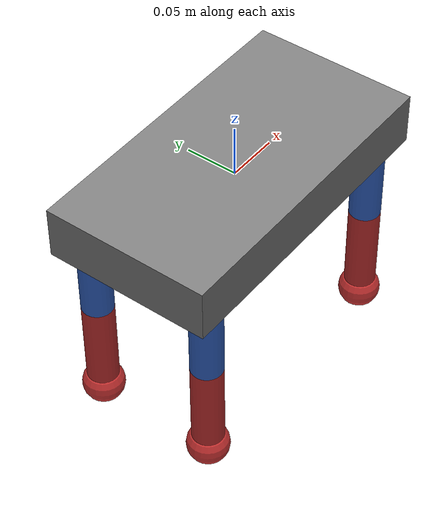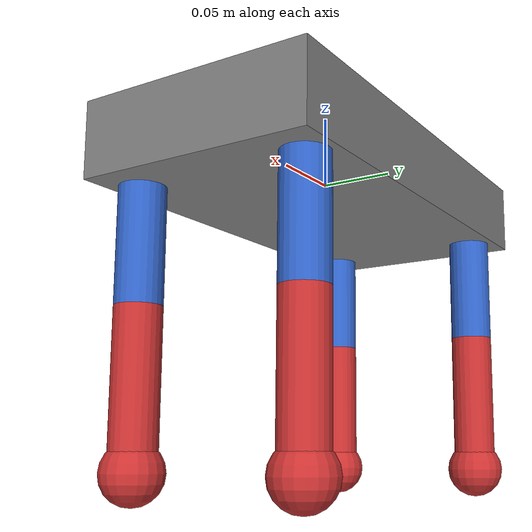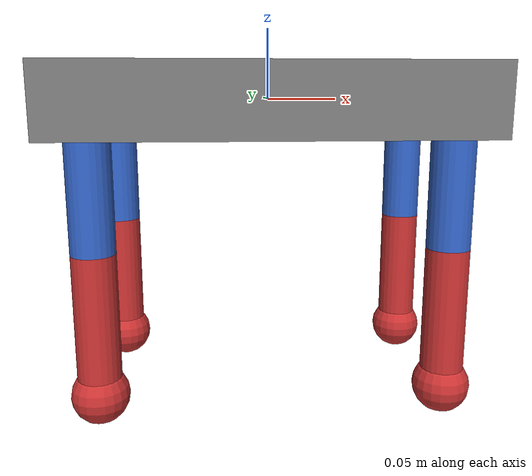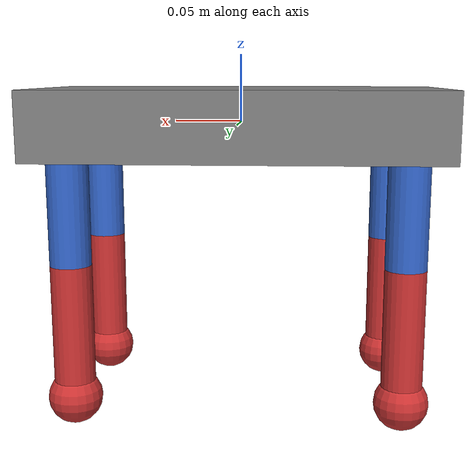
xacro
<?xml version="1.0"?>
<robot xmlns:xacro="http://www.ros.org/wiki/xacro" name="dog">

  <!-- ===================== 全局参数 ===================== -->
  <xacro:property name="body_length"  value="0.30"/>
  <xacro:property name="body_width"   value="0.16"/>
  <xacro:property name="body_height"  value="0.05"/>

  <xacro:property name="thigh_length" value="0.10"/>
  <xacro:property name="calf_length"  value="0.10"/>
  <xacro:property name="leg_radius"   value="0.015"/>
  <xacro:property name="foot_radius"  value="0.02"/>

  <!-- 关节限位与力矩，教具阶段先用保守值 -->
  <xacro:property name="hip_limit"   value="0.8"/>
  <xacro:property name="thigh_limit" value="1.2"/>
  <xacro:property name="calf_limit"  value="1.5"/>
  <xacro:property name="joint_effort" value="10.0"/>
  <xacro:property name="joint_velocity" value="5.0"/>

  <!-- ===================== 材质 ===================== -->
  <material name="gray">
    <color rgba="0.5 0.5 0.5 1.0"/>
  </material>
  <material name="blue">
    <color rgba="0.2 0.4 0.8 1.0"/>
  </material>
  <material name="red">
    <color rgba="0.8 0.2 0.2 1.0"/>
  </material>

  <!-- ===================== 惯性宏 ===================== -->
  <xacro:macro name="box_inertial" params="mass x y z">
    <inertial>
      <mass value="${mass}"/>
      <origin xyz="0 0 0" rpy="0 0 0"/>
      <inertia ixx="${mass*(y*y+z*z)/12.0}" ixy="0.0" ixz="0.0"
               iyy="${mass*(x*x+z*z)/12.0}" iyz="0.0"
               izz="${mass*(x*x+y*y)/12.0}"/>
    </inertial>
  </xacro:macro>

  <xacro:macro name="cylinder_inertial" params="mass radius length">
    <inertial>
      <mass value="${mass}"/>
      <origin xyz="0 0 0" rpy="0 0 0"/>
      <inertia ixx="${mass*(3*radius*radius+length*length)/12.0}" ixy="0.0" ixz="0.0"
               iyy="${mass*(3*radius*radius+length*length)/12.0}" iyz="0.0"
               izz="${mass*radius*radius/2.0}"/>
    </inertial>
  </xacro:macro>

  <!-- 虚拟根连杆，解决 KDL 和 Gazebo 对根连杆惯性的限制 -->
  <link name="base_footprint"/>

  <joint name="base_joint" type="fixed">
    <parent link="base_footprint"/>
    <child link="base_link"/>
    <origin xyz="0 0 0" rpy="0 0 0"/>
  </joint>

  <!-- ===================== 机身 ===================== -->
  <link name="base_link">
    <visual>
      <origin xyz="0 0 0" rpy="0 0 0"/>
      <geometry>
        <box size="${body_length} ${body_width} ${body_height}"/>
      </geometry>
      <material name="gray"/>
    </visual>
    <collision>
      <origin xyz="0 0 0" rpy="0 0 0"/>
      <geometry>
        <box size="${body_length} ${body_width} ${body_height}"/>
      </geometry>
    </collision>
    <xacro:box_inertial mass="2.0" x="${body_length}" y="${body_width}" z="${body_height}"/>
  </link>

  <!-- ===================== 单腿宏 ===================== -->
  <xacro:macro name="leg" params="prefix hip_x hip_y">

    <!-- 髋关节：连接机身与大腿，绕 x 轴摆动 -->
    <joint name="${prefix}_hip_joint" type="revolute">
      <parent link="base_link"/>
      <child link="${prefix}_thigh_link"/>
      <origin xyz="${hip_x} ${hip_y} 0" rpy="0 0 0"/>
      <axis xyz="1 0 0"/>
      <limit lower="${-hip_limit}" upper="${hip_limit}"
             effort="${joint_effort}" velocity="${joint_velocity}"/>
      <dynamics damping="0.5" friction="0.1"/>
    </joint>

    <!-- 大腿连杆 -->
    <link name="${prefix}_thigh_link">
      <visual>
        <origin xyz="0 0 ${-thigh_length/2.0}" rpy="0 0 0"/>
        <geometry>
          <cylinder radius="${leg_radius}" length="${thigh_length}"/>
        </geometry>
        <material name="blue"/>
      </visual>
      <collision>
        <origin xyz="0 0 ${-thigh_length/2.0}" rpy="0 0 0"/>
        <geometry>
          <cylinder radius="${leg_radius}" length="${thigh_length}"/>
        </geometry>
      </collision>
      <xacro:cylinder_inertial mass="0.3" radius="${leg_radius}" length="${thigh_length}"/>
    </link>

    <!-- 大腿关节：连接大腿与小腿，绕 y 轴转动 -->
    <joint name="${prefix}_thigh_joint" type="revolute">
      <parent link="${prefix}_thigh_link"/>
      <child link="${prefix}_calf_link"/>
      <origin xyz="0 0 ${-thigh_length}" rpy="0 0 0"/>
      <axis xyz="0 1 0"/>
      <limit lower="${-thigh_limit}" upper="${thigh_limit}"
             effort="${joint_effort}" velocity="${joint_velocity}"/>
      <dynamics damping="0.5" friction="0.1"/>
    </joint>

    <!-- 小腿连杆 -->
    <link name="${prefix}_calf_link">
      <visual>
        <origin xyz="0 0 ${-calf_length/2.0}" rpy="0 0 0"/>
        <geometry>
          <cylinder radius="${leg_radius}" length="${calf_length}"/>
        </geometry>
        <material name="red"/>
      </visual>
      <collision>
        <origin xyz="0 0 ${-calf_length/2.0}" rpy="0 0 0"/>
        <geometry>
          <cylinder radius="${leg_radius}" length="${calf_length}"/>
        </geometry>
      </collision>
      <xacro:cylinder_inertial mass="0.2" radius="${leg_radius}" length="${calf_length}"/>
    </link>

    <!-- 小腿关节：连接小腿与足端，绕 y 轴转动 -->
    <joint name="${prefix}_calf_joint" type="revolute">
      <parent link="${prefix}_calf_link"/>
      <child link="${prefix}_foot_link"/>
      <origin xyz="0 0 ${-calf_length}" rpy="0 0 0"/>
      <axis xyz="0 1 0"/>
      <limit lower="${-calf_limit}" upper="${calf_limit}"
             effort="${joint_effort}" velocity="${joint_velocity}"/>
      <dynamics damping="0.5" friction="0.1"/>
    </joint>

    <!-- 足端连杆 -->
    <link name="${prefix}_foot_link">
      <visual>
        <origin xyz="0 0 0" rpy="0 0 0"/>
        <geometry>
          <sphere radius="${foot_radius}"/>
        </geometry>
        <material name="red"/>
      </visual>
      <collision>
        <origin xyz="0 0 0" rpy="0 0 0"/>
        <geometry>
          <sphere radius="${foot_radius}"/>
        </geometry>
      </collision>
      <inertial>
        <mass value="0.05"/>
        <origin xyz="0 0 0" rpy="0 0 0"/>
        <inertia ixx="1e-5" ixy="0.0" ixz="0.0"
                 iyy="1e-5" iyz="0.0"
                 izz="1e-5"/>
      </inertial>
    </link>

  </xacro:macro>

  <!-- ===================== 四条腿 ===================== -->
  <!-- 髋关节位置：x 前后，y 左右 -->
  <!-- 顺序：FL, FR, RL, RR，与关节编号规范一致 -->

  <xacro:leg prefix="FL" hip_x="${ body_length/2.0 - 0.03}" hip_y="${ body_width/2.0 - 0.02}"/>
  <xacro:leg prefix="FR" hip_x="${ body_length/2.0 - 0.03}" hip_y="${-body_width/2.0 + 0.02}"/>
  <xacro:leg prefix="RL" hip_x="${-body_length/2.0 + 0.03}" hip_y="${ body_width/2.0 - 0.02}"/>
  <xacro:leg prefix="RR" hip_x="${-body_length/2.0 + 0.03}" hip_y="${-body_width/2.0 + 0.02}"/>

<!-- ===================== ros2_control ===================== -->
<ros2_control name="DogSystem" type="system">
  <hardware>
    <plugin>gazebo_ros2_control/GazeboSystem</plugin>
  </hardware>

  <joint name="FL_hip_joint">
    <command_interface name="position"/>
    <state_interface name="position"/>
    <state_interface name="velocity"/>
  </joint>
  <joint name="FL_thigh_joint">
    <command_interface name="position"/>
    <state_interface name="position"/>
    <state_interface name="velocity"/>
  </joint>
  <joint name="FL_calf_joint">
    <command_interface name="position"/>
    <state_interface name="position"/>
    <state_interface name="velocity"/>
  </joint>

  <joint name="FR_hip_joint">
    <command_interface name="position"/>
    <state_interface name="position"/>
    <state_interface name="velocity"/>
  </joint>
  <joint name="FR_thigh_joint">
    <command_interface name="position"/>
    <state_interface name="position"/>
    <state_interface name="velocity"/>
  </joint>
  <joint name="FR_calf_joint">
    <command_interface name="position"/>
    <state_interface name="position"/>
    <state_interface name="velocity"/>
  </joint>

  <joint name="RL_hip_joint">
    <command_interface name="position"/>
    <state_interface name="position"/>
    <state_interface name="velocity"/>
  </joint>
  <joint name="RL_thigh_joint">
    <command_interface name="position"/>
    <state_interface name="position"/>
    <state_interface name="velocity"/>
  </joint>
  <joint name="RL_calf_joint">
    <command_interface name="position"/>
    <state_interface name="position"/>
    <state_interface name="velocity"/>
  </joint>

  <joint name="RR_hip_joint">
    <command_interface name="position"/>
    <state_interface name="position"/>
    <state_interface name="velocity"/>
  </joint>
  <joint name="RR_thigh_joint">
    <command_interface name="position"/>
    <state_interface name="position"/>
    <state_interface name="velocity"/>
  </joint>
  <joint name="RR_calf_joint">
    <command_interface name="position"/>
    <state_interface name="position"/>
    <state_interface name="velocity"/>
  </joint>
</ros2_control>

<!-- ===================== Gazebo 插件 ===================== -->
<gazebo>
  <plugin filename="libgazebo_ros2_control.so" name="gazebo_ros2_control">
    <parameters>$(find dog_description)/config/controllers.yaml</parameters>
  </plugin>
</gazebo>

<!-- ===================== Gazebo 接触参数 ===================== -->
<gazebo reference="base_link">
  <mu1>0.5</mu1>
  <mu2>0.5</mu2>
  <kp>10000</kp>
  <kd>10</kd>
  <minDepth>0.001</minDepth>
  <maxVel>0.1</maxVel>
</gazebo>

<gazebo reference="FL_thigh_link"><mu1>0.5</mu1><mu2>0.5</mu2><kp>10000</kp><kd>10</kd><minDepth>0.001</minDepth><maxVel>0.1</maxVel></gazebo>
<gazebo reference="FL_calf_link"><mu1>0.5</mu1><mu2>0.5</mu2><kp>10000</kp><kd>10</kd><minDepth>0.001</minDepth><maxVel>0.1</maxVel></gazebo>
<gazebo reference="FL_foot_link"><mu1>1.0</mu1><mu2>1.0</mu2><kp>10000</kp><kd>10</kd><minDepth>0.001</minDepth><maxVel>0.1</maxVel></gazebo>

<gazebo reference="FR_thigh_link"><mu1>0.5</mu1><mu2>0.5</mu2><kp>10000</kp><kd>10</kd><minDepth>0.001</minDepth><maxVel>0.1</maxVel></gazebo>
<gazebo reference="FR_calf_link"><mu1>0.5</mu1><mu2>0.5</mu2><kp>10000</kp><kd>10</kd><minDepth>0.001</minDepth><maxVel>0.1</maxVel></gazebo>
<gazebo reference="FR_foot_link"><mu1>1.0</mu1><mu2>1.0</mu2><kp>10000</kp><kd>10</kd><minDepth>0.001</minDepth><maxVel>0.1</maxVel></gazebo>

<gazebo reference="RL_thigh_link"><mu1>0.5</mu1><mu2>0.5</mu2><kp>10000</kp><kd>10</kd><minDepth>0.001</minDepth><maxVel>0.1</maxVel></gazebo>
<gazebo reference="RL_calf_link"><mu1>0.5</mu1><mu2>0.5</mu2><kp>10000</kp><kd>10</kd><minDepth>0.001</minDepth><maxVel>0.1</maxVel></gazebo>
<gazebo reference="RL_foot_link"><mu1>1.0</mu1><mu2>1.0</mu2><kp>10000</kp><kd>10</kd><minDepth>0.001</minDepth><maxVel>0.1</maxVel></gazebo>

<gazebo reference="RR_thigh_link"><mu1>0.5</mu1><mu2>0.5</mu2><kp>10000</kp><kd>10</kd><minDepth>0.001</minDepth><maxVel>0.1</maxVel></gazebo>
<gazebo reference="RR_calf_link"><mu1>0.5</mu1><mu2>0.5</mu2><kp>10000</kp><kd>10</kd><minDepth>0.001</minDepth><maxVel>0.1</maxVel></gazebo>
<gazebo reference="RR_foot_link"><mu1>1.0</mu1><mu2>1.0</mu2><kp>10000</kp><kd>10</kd><minDepth>0.001</minDepth><maxVel>0.1</maxVel></gazebo>

</robot>
